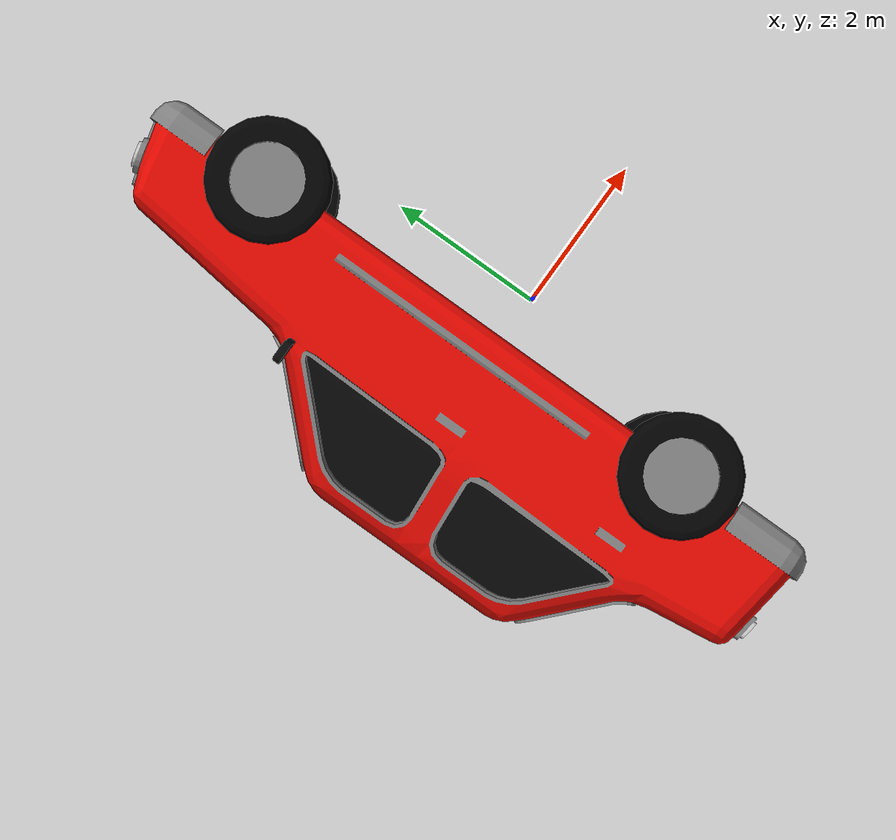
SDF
<?xml version="1.0" ?>
<sdf version='1.5'>
  <model name='car'>
    <static>true</static>
      <link name='link'>
        <pose frame=''>0 0 0.9 1.57 0 -1.57</pose>

        <visual name='visual'>
        <cast_shadows>false</cast_shadows>
          <geometry>
            <mesh>
                <scale>1.7 1.7 1.7</scale>
              <uri>model://car/meshes/car.dae</uri>
            </mesh>
          </geometry>

        </visual>
      </link>
  </model>
</sdf>
